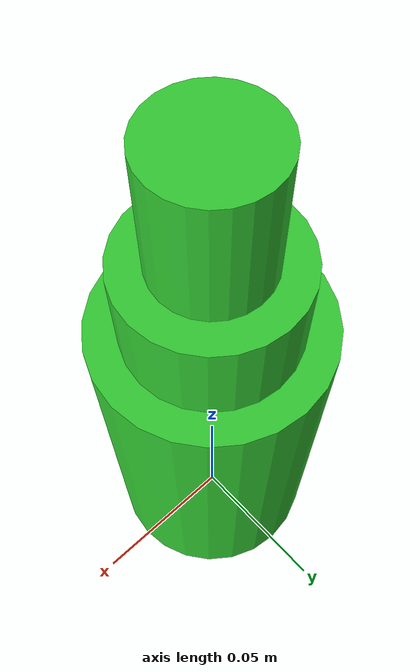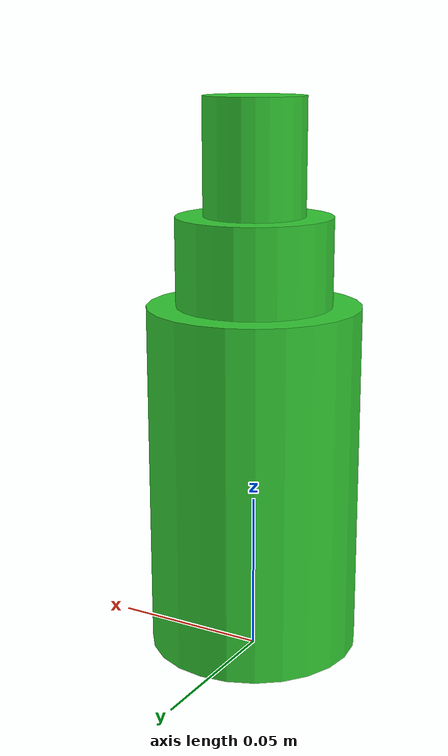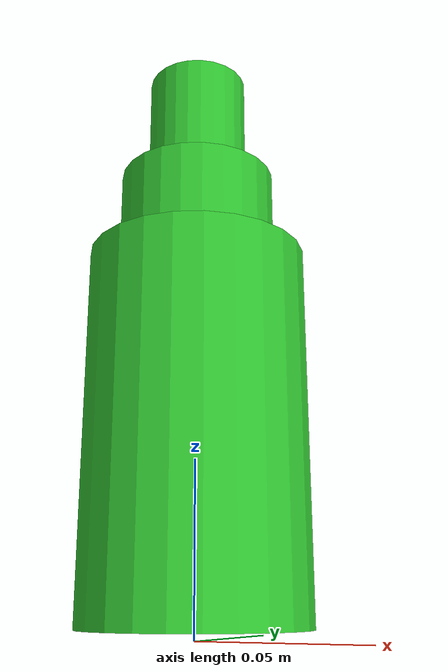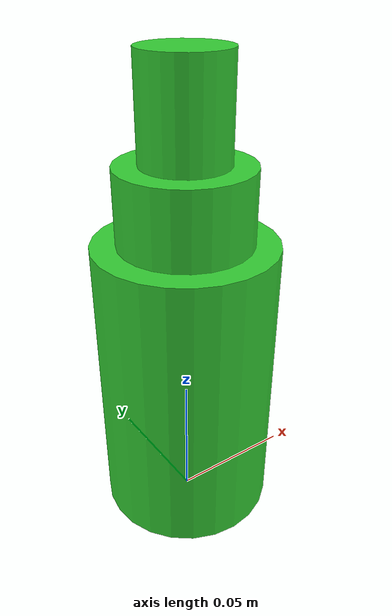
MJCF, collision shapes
<mujoco model="boston_round_bottle">
  <compiler angle="radian" meshdir="." />

  <asset>
    <mesh name="bottle_mesh" file="bottle.obj" />
    <material name="bottle_mat" rgba="0.92 0.94 0.96 0.9" specular="0.6" shininess="0.5" />
    <material name="collision_mat" rgba="0.2 0.8 0.2 0.0" />
  </asset>

  <default>
    <!-- Bottle friction: sliding (1.2), torsional (0.005), rolling (0.0001) for robust grasp -->
    <default class="bottle_collision">
      <geom contype="1" conaffinity="1" condim="4" friction="1.2 0.005 0.0001" material="collision_mat" />
    </default>
  </default>

  <worldbody>
    <body name="bottle" pos="0 0 0">
      <!-- Freejoint allows the bottle to move freely in 3D space -->
      <freejoint name="bottle_joint" />

      <!-- Center of Mass: ~0.075m height for 150g plastic bottle -->
      <inertial pos="0 0 0.075" mass="0.15" diaginertia="0.0004 0.0004 0.00015" />

      <!-- 1. Visual Geometry: High-resolution OBJ Mesh (contype=0 conaffinity=0: no physics collision) -->
      <geom name="bottle_visual" type="mesh" mesh="bottle_mesh" class="bottle_collision"
            contype="0" conaffinity="0" group="1" material="bottle_mat" />

      <!-- 2. Collision Geometries: Analytical Primitives (Perfect for stable gripping & slip detection) -->
      <!-- Main cylindrical body (radius 0.033m, half-height 0.055m, centered at z=0.058m) -->
      <geom name="bottle_body_col" class="bottle_collision" type="cylinder"
            pos="0 0 0.058" size="0.033 0.055" group="0" />

      <!-- Shoulder transition cap -->
      <geom name="bottle_shoulder_col" class="bottle_collision" type="cylinder"
            pos="0 0 0.125" size="0.024 0.015" group="0" />

      <!-- Neck & Cap (radius 0.0155m, half-height 0.0175m, centered at z=0.1575m) -->
      <geom name="bottle_cap_col" class="bottle_collision" type="cylinder"
            pos="0 0 0.1575" size="0.0155 0.0175" group="0" />

    </body>
  </worldbody>
</mujoco>
